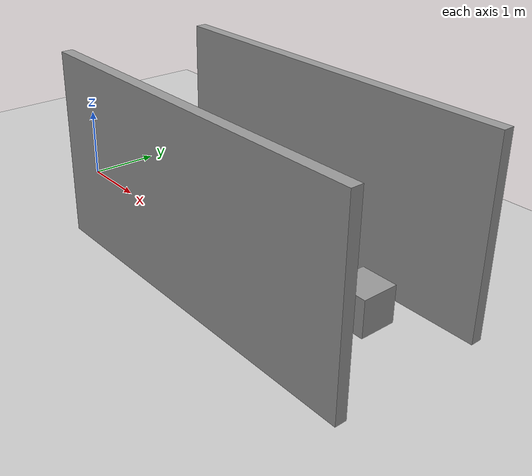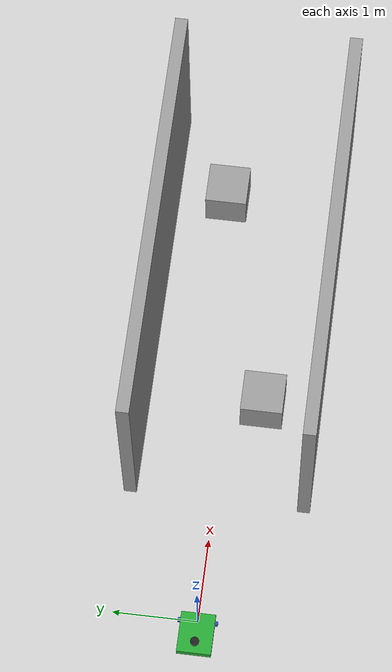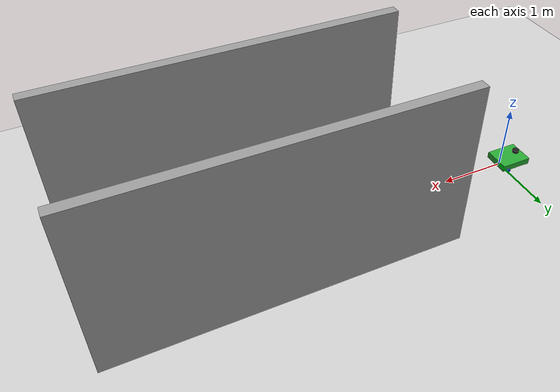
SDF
<sdf version="1.7">
 <world name="default">
  <light name="sun" type="directional">
   <pose>0 0 10 0 -0 0</pose>
   <diffuse>0.8 0.8 0.8 1</diffuse>
   <specular>0.2 0.2 0.2 1</specular>
   <attenuation>
    <range>1000</range>
    <constant>0.9</constant>
    <linear>0.01</linear>
    <quadratic>0.001</quadratic>
   </attenuation>
   <direction>-0.5 0.1 -0.9</direction>
   <spot><inner_angle>0</inner_angle><outer_angle>0</outer_angle><falloff>0</falloff></spot>
  </light>
  <model name="ground_plane">
   <static>1</static>
   <link name="link">
    <collision name="collision">
     <geometry><plane><normal>0 0 1</normal><size>100 100</size></plane></geometry>
     <surface><friction><ode><mu>100</mu><mu2>50</mu2></ode></friction></surface>
    </collision>
    <visual name="visual">
     <cast_shadows>0</cast_shadows>
     <geometry><plane><normal>0 0 1</normal><size>100 100</size></plane></geometry>
     <material>
      <script><uri>file://media/materials/scripts/gazebo.material</uri><name>Gazebo/Grey</name></script>
     </material>
    </visual>
   </link>
  </model>
  <gravity>0 0 -9.8</gravity>
  <magnetic_field>6e-06 2.3e-05 -4.2e-05</magnetic_field>
  <atmosphere type="adiabatic"/>
  <physics type="ode">
   <max_step_size>0.001</max_step_size>
   <real_time_factor>1</real_time_factor>
   <real_time_update_rate>1000</real_time_update_rate>
  </physics>
  <scene><ambient>0.4 0.4 0.4 1</ambient><background>0.7 0.7 0.7 1</background><shadows>1</shadows></scene>
  <audio><device>default</device></audio>
  <spherical_coordinates>
   <surface_model>EARTH_WGS84</surface_model>
   <latitude_deg>0</latitude_deg>
   <longitude_deg>0</longitude_deg>
   <elevation>0</elevation>
   <heading_deg>0</heading_deg>
  </spherical_coordinates>
  <model name="box_0.5">
   <link name="link_0">
    <inertial>
     <mass>1</mass>
     <inertia>
      <ixx>0.166667</ixx>
      <ixy>0</ixy>
      <ixz>0</ixz>
      <iyy>0.166667</iyy>
      <iyz>0</iyz>
      <izz>0.166667</izz>
     </inertia>
    </inertial>
    <visual name="visual">
     <geometry><box><size>0.5 0.5 0.5</size></box></geometry>
     <material>
      <lighting>1</lighting>
      <script><uri>file://media/materials/scripts/gazebo.material</uri><name>Gazebo/Grey</name></script>
      <shader type="pixel"><normal_map>__default__</normal_map></shader>
      <ambient>0.3 0.3 0.3 1</ambient>
      <diffuse>0.7 0.7 0.7 1</diffuse>
      <specular>0.01 0.01 0.01 1</specular>
      <emissive>0 0 0 1</emissive>
     </material>
    </visual>
    <collision name="collision">
     <geometry><box><size>0.5 0.5 0.5</size></box></geometry>
     <surface>
      <friction>
       <ode><mu>1</mu><mu2>1</mu2><fdir1>0 0 0</fdir1><slip1>0</slip1><slip2>0</slip2></ode>
       <torsional>
        <coefficient>1</coefficient>
        <patch_radius>0</patch_radius>
        <surface_radius>0</surface_radius>
        <use_patch_radius>1</use_patch_radius>
        <ode><slip>0</slip></ode>
       </torsional>
      </friction>
      <bounce><restitution_coefficient>0</restitution_coefficient><threshold>1e+06</threshold></bounce>
      <contact>
       <collide_without_contact>0</collide_without_contact>
       <collide_without_contact_bitmask>1</collide_without_contact_bitmask>
       <collide_bitmask>1</collide_bitmask>
       <ode>
        <soft_cfm>0</soft_cfm>
        <soft_erp>0.2</soft_erp>
        <kp>1e+13</kp>
        <kd>1</kd>
        <max_vel>0.01</max_vel>
        <min_depth>0</min_depth>
       </ode>
       <bullet>
        <split_impulse>1</split_impulse>
        <split_impulse_penetration_threshold>-0.01</split_impulse_penetration_threshold>
        <soft_cfm>0</soft_cfm>
        <soft_erp>0.2</soft_erp>
        <kp>1e+13</kp>
        <kd>1</kd>
       </bullet>
      </contact>
     </surface>
    </collision>
   </link>
   <static>0</static>
   <pose>2.7444 -0.43279 0.25 0 -0 0</pose>
  </model>
  <model name="box_0.5_clone">
   <link name="link_0">
    <inertial>
     <mass>1</mass>
     <inertia>
      <ixx>0.166667</ixx>
      <ixy>0</ixy>
      <ixz>0</ixz>
      <iyy>0.166667</iyy>
      <iyz>0</iyz>
      <izz>0.166667</izz>
     </inertia>
    </inertial>
    <visual name="visual">
     <geometry><box><size>0.5 0.5 0.5</size></box></geometry>
     <material>
      <lighting>1</lighting>
      <script><uri>file://media/materials/scripts/gazebo.material</uri><name>Gazebo/Grey</name></script>
      <shader type="pixel"><normal_map>__default__</normal_map></shader>
      <ambient>0.3 0.3 0.3 1</ambient>
      <diffuse>0.7 0.7 0.7 1</diffuse>
      <specular>0.01 0.01 0.01 1</specular>
      <emissive>0 0 0 1</emissive>
     </material>
    </visual>
    <collision name="collision">
     <geometry><box><size>0.5 0.5 0.5</size></box></geometry>
     <surface>
      <friction>
       <ode><mu>1</mu><mu2>1</mu2><fdir1>0 0 0</fdir1><slip1>0</slip1><slip2>0</slip2></ode>
       <torsional>
        <coefficient>1</coefficient>
        <patch_radius>0</patch_radius>
        <surface_radius>0</surface_radius>
        <use_patch_radius>1</use_patch_radius>
        <ode><slip>0</slip></ode>
       </torsional>
      </friction>
      <bounce><restitution_coefficient>0</restitution_coefficient><threshold>1e+06</threshold></bounce>
      <contact>
       <collide_without_contact>0</collide_without_contact>
       <collide_without_contact_bitmask>1</collide_without_contact_bitmask>
       <collide_bitmask>1</collide_bitmask>
       <ode>
        <soft_cfm>0</soft_cfm>
        <soft_erp>0.2</soft_erp>
        <kp>1e+13</kp>
        <kd>1</kd>
        <max_vel>0.01</max_vel>
        <min_depth>0</min_depth>
       </ode>
       <bullet>
        <split_impulse>1</split_impulse>
        <split_impulse_penetration_threshold>-0.01</split_impulse_penetration_threshold>
        <soft_cfm>0</soft_cfm>
        <soft_erp>0.2</soft_erp>
        <kp>1e+13</kp>
        <kd>1</kd>
       </bullet>
      </contact>
     </surface>
    </collision>
   </link>
   <static>0</static>
   <pose>5.42725 0.319744 0.25 0 -0 0</pose>
  </model>
  <model name="my_bot">
   <link name="base_link">
    <inertial>
     <pose>-0.186129 0 0.054194 0 -0 0</pose>
     <mass>0.62</mass>
     <inertia>
      <ixx>0.00882906</ixx>
      <ixy>0</ixy>
      <ixz>0.000686065</ixz>
      <iyy>0.0129775</iyy>
      <iyz>-6.77626e-21</iyz>
      <izz>0.0190516</izz>
     </inertia>
    </inertial>
    <collision name="base_link_fixed_joint_lump__chassis_collision">
     <pose>-0.16 0 0.04 0 -0 0</pose>
     <geometry><box><size>0.48 0.4 0.1</size></box></geometry>
    </collision>
    <collision name="base_link_fixed_joint_lump__caster_wheel_collision_1">
     <pose>-0.38 0.19 -0.02 0 -0 0</pose>
     <geometry><sphere><radius>0.01</radius></sphere></geometry>
     <surface><friction><ode><mu>0.001</mu><mu2>0.001</mu2></ode></friction></surface>
    </collision>
    <collision name="base_link_fixed_joint_lump__caster_wheel2_collision_2">
     <pose>-0.38 -0.19 -0.02 0 -0 0</pose>
     <geometry><sphere><radius>0.01</radius></sphere></geometry>
     <surface><friction><ode><mu>0.001</mu><mu2>0.001</mu2></ode></friction></surface>
    </collision>
    <collision name="base_link_fixed_joint_lump__laser_frame_collision_3">
     <pose>-0.278 0 0.14 0 -0 0</pose>
     <geometry><cylinder><length>0.04</length><radius>0.05</radius></cylinder></geometry>
    </collision>
    <visual name="base_link_fixed_joint_lump__chassis_visual">
     <pose>-0.16 0 0.04 0 -0 0</pose>
     <geometry><box><size>0.48 0.4 0.1</size></box></geometry>
     <material>
      <script><name>Gazebo/Green</name><uri>file://media/materials/scripts/gazebo.material</uri></script>
     </material>
    </visual>
    <visual name="base_link_fixed_joint_lump__caster_wheel_visual_1">
     <pose>-0.38 0.19 -0.02 0 -0 0</pose>
     <geometry><sphere><radius>0.01</radius></sphere></geometry>
     <material>
      <script><name>Gazebo/White</name><uri>file://media/materials/scripts/gazebo.material</uri></script>
     </material>
    </visual>
    <visual name="base_link_fixed_joint_lump__caster_wheel2_visual_2">
     <pose>-0.38 -0.19 -0.02 0 -0 0</pose>
     <geometry><sphere><radius>0.01</radius></sphere></geometry>
     <material>
      <script><name>Gazebo/White</name><uri>file://media/materials/scripts/gazebo.material</uri></script>
     </material>
    </visual>
    <visual name="base_link_fixed_joint_lump__laser_frame_visual_3">
     <pose>-0.278 0 0.14 0 -0 0</pose>
     <geometry><cylinder><length>0.04</length><radius>0.05</radius></cylinder></geometry>
     <material>
      <script><name>Gazebo/Black</name><uri>file://media/materials/scripts/gazebo.material</uri></script>
     </material>
    </visual>
    <visual name="base_link_fixed_joint_lump__laser_frame_visual_4">
     <pose>-0.278 0 0.09 0 -0 0</pose>
     <geometry><cylinder><length>0.1</length><radius>0.01</radius></cylinder></geometry>
     <material>
      <script><name>Gazebo/Black</name><uri>file://media/materials/scripts/gazebo.material</uri></script>
     </material>
    </visual>
    <sensor name="laser" type="ray">
     <visualize>0</visualize>
     <update_rate>10</update_rate>
     <ray>
      <scan>
       <horizontal>
        <samples>360</samples>
        <min_angle>-3.14</min_angle>
        <max_angle>3.14</max_angle>
        <resolution>1</resolution>
       </horizontal>
       <vertical><samples>1</samples><min_angle>0</min_angle><max_angle>0</max_angle></vertical>
      </scan>
      <range><min>0.3</min><max>12</max></range>
     </ray>
     <plugin name="laser_controller" filename="libgazebo_ros_ray_sensor.so">
      <ros><argument>~/out:=scan</argument></ros>
      <output_type>sensor_msgs/LaserScan</output_type>
      <frame_name>laser_frame</frame_name>
     </plugin>
     <pose>-0.278 0 0.14 0 -0 0</pose>
    </sensor>
   </link>
   <joint name="left_wheel_joint" type="revolute">
    <pose relative_to="base_link">0 0.22 0 -1.5708 0 0</pose>
    <parent>base_link</parent>
    <child>left_wheel</child>
    <axis>
     <xyz>0 0 1</xyz>
     <limit><lower>-1e+16</lower><upper>1e+16</upper></limit>
     <dynamics><spring_reference>0</spring_reference><spring_stiffness>0</spring_stiffness></dynamics>
    </axis>
   </joint>
   <link name="left_wheel">
    <pose relative_to="left_wheel_joint">0 0 0 0 -0 0</pose>
    <inertial>
     <mass>0.05</mass>
     <inertia>
      <ixx>1.40667e-05</ixx>
      <ixy>0</ixy>
      <ixz>0</ixz>
      <iyy>1.40667e-05</iyy>
      <iyz>0</iyz>
      <izz>2.25e-05</izz>
     </inertia>
    </inertial>
    <collision name="left_wheel_collision"><geometry><sphere><radius>0.03</radius></sphere></geometry></collision>
    <visual name="left_wheel_visual">
     <geometry><cylinder><length>0.026</length><radius>0.03</radius></cylinder></geometry>
     <material>
      <script><name>Gazebo/Blue</name><uri>file://media/materials/scripts/gazebo.material</uri></script>
     </material>
    </visual>
   </link>
   <joint name="right_wheel_joint" type="revolute">
    <pose relative_to="base_link">0 -0.22 0 1.5708 -0 0</pose>
    <parent>base_link</parent>
    <child>right_wheel</child>
    <axis>
     <xyz>0 0 -1</xyz>
     <limit><lower>-1e+16</lower><upper>1e+16</upper></limit>
     <dynamics><spring_reference>0</spring_reference><spring_stiffness>0</spring_stiffness></dynamics>
    </axis>
   </joint>
   <link name="right_wheel">
    <pose relative_to="right_wheel_joint">0 0 0 0 -0 0</pose>
    <inertial>
     <mass>0.05</mass>
     <inertia>
      <ixx>1.40667e-05</ixx>
      <ixy>0</ixy>
      <ixz>0</ixz>
      <iyy>1.40667e-05</iyy>
      <iyz>0</iyz>
      <izz>2.25e-05</izz>
     </inertia>
    </inertial>
    <collision name="right_wheel_collision">
     <geometry><sphere><radius>0.03</radius></sphere></geometry>
    </collision>
    <visual name="right_wheel_visual">
     <geometry><cylinder><length>0.026</length><radius>0.03</radius></cylinder></geometry>
     <material>
      <script><name>Gazebo/Blue</name><uri>file://media/materials/scripts/gazebo.material</uri></script>
     </material>
    </visual>
   </link>
   <static>0</static>
   <plugin name="diff_drive" filename="libgazebo_ros_diff_drive.so">
    <left_joint>left_wheel_joint</left_joint>
    <right_joint>right_wheel_joint</right_joint>
    <wheel_separation>0.426</wheel_separation>
    <wheel_diameter>0.066</wheel_diameter>
    <max_wheel_torque>200</max_wheel_torque>
    <max_wheel_acceleration>10.0</max_wheel_acceleration>
    <odometry_topic>odom</odometry_topic>
    <odometry_frame>odom</odometry_frame>
    <robot_base_frame>base_link</robot_base_frame>
    <publish_odom>1</publish_odom>
    <publish_odom_tf>1</publish_odom_tf>
    <publish_wheel_tf>1</publish_wheel_tf>
   </plugin>
   <pose>-0.006582 0.000151 0.029994 2.7e-05 3e-06 0.000242</pose>
  </model>
  <model name="corridor4">
   <link name="Wall_11">
    <pose>0.398282 1.02385 0 0 -0 0</pose>
    <visual name="Wall_11_Visual">
     <pose>0 0 1.25 0 -0 0</pose>
     <geometry><box><size>5 0.15 2.5</size></box></geometry>
     <material>
      <script><uri>file://media/materials/scripts/gazebo.material</uri><name>Gazebo/Grey</name></script>
      <ambient>1 1 1 1</ambient>
      <shader type="pixel"/>
     </material>
     <meta><layer>0</layer></meta>
    </visual>
    <collision name="Wall_11_Collision">
     <pose>0 0 1.25 0 -0 0</pose>
     <geometry><box><size>5 0.15 2.5</size></box></geometry>
     <surface>
      <friction>
       <ode><mu>1</mu><mu2>1</mu2><fdir1>0 0 0</fdir1><slip1>0</slip1><slip2>0</slip2></ode>
       <torsional>
        <coefficient>1</coefficient>
        <patch_radius>0</patch_radius>
        <surface_radius>0</surface_radius>
        <use_patch_radius>1</use_patch_radius>
        <ode><slip>0</slip></ode>
       </torsional>
      </friction>
      <bounce><restitution_coefficient>0</restitution_coefficient><threshold>1e+06</threshold></bounce>
      <contact>
       <collide_without_contact>0</collide_without_contact>
       <collide_without_contact_bitmask>1</collide_without_contact_bitmask>
       <collide_bitmask>1</collide_bitmask>
       <ode>
        <soft_cfm>0</soft_cfm>
        <soft_erp>0.2</soft_erp>
        <kp>1e+13</kp>
        <kd>1</kd>
        <max_vel>0.01</max_vel>
        <min_depth>0</min_depth>
       </ode>
       <bullet>
        <split_impulse>1</split_impulse>
        <split_impulse_penetration_threshold>-0.01</split_impulse_penetration_threshold>
        <soft_cfm>0</soft_cfm>
        <soft_erp>0.2</soft_erp>
        <kp>1e+13</kp>
        <kd>1</kd>
       </bullet>
      </contact>
     </surface>
    </collision>
   </link>
   <link name="Wall_8">
    <pose>0.386025 -1.03339 0 0 -0 0</pose>
    <visual name="Wall_8_Visual">
     <pose>0 0 1.25 0 -0 0</pose>
     <geometry><box><size>5 0.15 2.5</size></box></geometry>
     <material>
      <script><uri>file://media/materials/scripts/gazebo.material</uri><name>Gazebo/Grey</name></script>
      <ambient>1 1 1 1</ambient>
      <shader type="pixel"/>
     </material>
     <meta><layer>0</layer></meta>
    </visual>
    <collision name="Wall_8_Collision">
     <pose>0 0 1.25 0 -0 0</pose>
     <geometry><box><size>5 0.15 2.5</size></box></geometry>
     <surface>
      <friction>
       <ode><mu>1</mu><mu2>1</mu2><fdir1>0 0 0</fdir1><slip1>0</slip1><slip2>0</slip2></ode>
       <torsional>
        <coefficient>1</coefficient>
        <patch_radius>0</patch_radius>
        <surface_radius>0</surface_radius>
        <use_patch_radius>1</use_patch_radius>
        <ode><slip>0</slip></ode>
       </torsional>
      </friction>
      <bounce><restitution_coefficient>0</restitution_coefficient><threshold>1e+06</threshold></bounce>
      <contact>
       <collide_without_contact>0</collide_without_contact>
       <collide_without_contact_bitmask>1</collide_without_contact_bitmask>
       <collide_bitmask>1</collide_bitmask>
       <ode>
        <soft_cfm>0</soft_cfm>
        <soft_erp>0.2</soft_erp>
        <kp>1e+13</kp>
        <kd>1</kd>
        <max_vel>0.01</max_vel>
        <min_depth>0</min_depth>
       </ode>
       <bullet>
        <split_impulse>1</split_impulse>
        <split_impulse_penetration_threshold>-0.01</split_impulse_penetration_threshold>
        <soft_cfm>0</soft_cfm>
        <soft_erp>0.2</soft_erp>
        <kp>1e+13</kp>
        <kd>1</kd>
       </bullet>
      </contact>
     </surface>
    </collision>
   </link>
   <static>1</static>
   <pose>3.59475 -0.02601 0 0 -0 0</pose>
  </model>
 </world>
</sdf>
